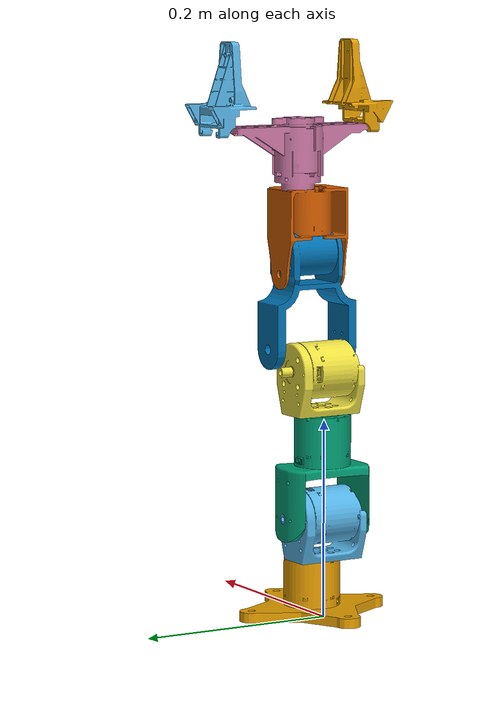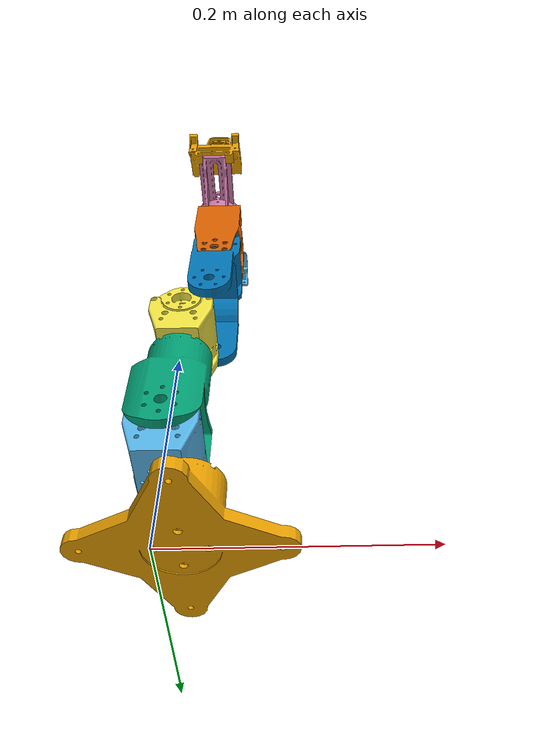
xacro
<?xml version="1.0"?>

<robot name="nxp_rs" xmlns:xacro="http://www.ros.org/wiki/xacro">
    <link name="base_link">
        <visual>
            <geometry>
                <mesh filename="package://nxp_rs_description/meshes/base-link.STL"/>
            </geometry>
        </visual>

    </link>

    <joint name="joint-1" type="revolute">
        <parent link="base_link"/>
        <child link="link_1"/>
        <origin xyz="0.00 0.00 0.06" rpy="0.00 0.00 0.00"/>
        <axis xyz="0 0 1"/>
        <limit lower="-3.14" upper="3.14" effort="1.0" velocity="1.0"/>
    </joint>

    <link name="link_1">
    <visual>
            <geometry>
            <mesh filename="package://nxp_rs_description/meshes/link-1.STL"/>
            </geometry>
        </visual>

    </link>

    <joint name="joint-2" type="revolute">
        <parent link="link_1"/>
        <child link="link_2"/>
        <origin xyz="0.00 -0.043 0.0445" rpy="0.00 0.00 0.00"/>
        <axis xyz="0 1 0"/>
        <limit lower="-1.863" upper="1.877" effort="1.0" velocity="1.0"/>
    </joint>

    <link name="link_2">
    <visual>
            <geometry>
            <mesh filename="package://nxp_rs_description/meshes/link-2.STL"/>
            </geometry>
        </visual>

    </link>

    <joint name="joint-3" type="revolute">
        <parent link="link_2"/>
        <child link="link_3"/>
        <origin xyz="0.00 0.046 0.1030" rpy="0.00 0.00 0.00"/>
        <axis xyz="0 0 1"/>
        <limit lower="-3.215" upper="3.015" effort="1.0" velocity="1.0"/>
    </joint>

    <link name="link_3">
    <visual>
            <geometry>
            <mesh filename="package://nxp_rs_description/meshes/link-3.STL"/>
            </geometry>
        </visual>

    </link>

    <joint name="joint-4" type="revolute">
        <parent link="link_3"/>
        <child link="link_4"/>
        <origin xyz="0.00 -0.043 0.0445" rpy="0.00 0.00 0.00"/>
        <axis xyz="0 1 0"/>
        <limit lower="-2.28" upper="2.086" effort="1.0" velocity="1.0"/>
    </joint>

    <link name="link_4">
    <visual>
            <geometry>
            <mesh filename="package://nxp_rs_description/meshes/link-4.STL"/>
            </geometry>
        </visual>

    </link>

    <joint name="joint-5" type="revolute">
        <parent link="link_4"/>
        <child link="link_5"/>
        <origin xyz="0.00 0.0125 0.095" rpy="0.00 0.00 0.00"/>
        <axis xyz="0 1 0"/>
        <limit lower="-1.839" upper="2.089" effort="1.0" velocity="1.0"/>
    </joint>

    <link name="link_5">
    <visual>
            <geometry>
            <mesh filename="package://nxp_rs_description/meshes/link-5.STL"/>
            </geometry>
        </visual>

    </link>

    <joint name="joint-6" type="revolute">
        <parent link="link_5"/>
        <child link="palm"/>
        <origin xyz="0.00 0.0322 0.0824" rpy="0.00 0.00 0.00"/>
        <axis xyz="0 0 1"/>
        <limit lower="-4.007354308" upper="2.381645692" effort="1.0" velocity="1.0"/>
    </joint>

    <link name="palm">
    <visual>
            <geometry>
            <mesh filename="package://nxp_rs_description/meshes/palm.STL"/>
            </geometry>
        </visual>

    </link>

    <!-- Fixed grasp/TCP frame centered between the mirrored fingers. -->
    <link name="grasp_frame"/>
    <joint name="grasp_frame_joint" type="fixed">
        <parent link="palm"/>
        <child link="grasp_frame"/>
        <origin xyz="0.002675 0.000000 0.103650" rpy="0.00 0.00 0.00"/>
    </joint>

    <link name="right-finger">
    <visual>
            <geometry>
            <mesh filename="package://nxp_rs_description/meshes/right-finger.STL"/>
            </geometry>
        </visual>

    </link>

    <joint name="joint_right-finger" type="prismatic">
        <parent link="palm"/>
        <child link="right-finger"/>
        <origin xyz="-0.013525 -0.077126 0.060400" rpy="0.00 0.00 0.00"/>
        <axis xyz="0 1 0"/>
        <limit lower="0.0" upper="0.0837560613" effort="1.0" velocity="1.0"/>
    </joint>

    <link name="left-finger">
    <visual>
            <geometry>
            <mesh filename="package://nxp_rs_description/meshes/left-finger.STL"/>
            </geometry>
        </visual>

    </link>

    <joint name="joint_left-finger" type="prismatic">
        <parent link="palm"/>
        <child link="left-finger"/>
        <origin xyz="-0.013525 0.077126 0.060400" rpy="0.00 0.00 0.00"/>
        <axis xyz="0 1 0"/>
        <limit lower="-0.0837560613" upper="0.0" effort="1.0" velocity="1.0"/>
    </joint>

</robot>
